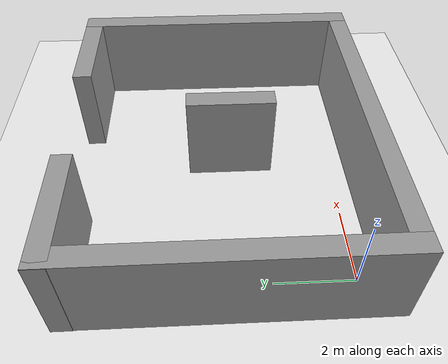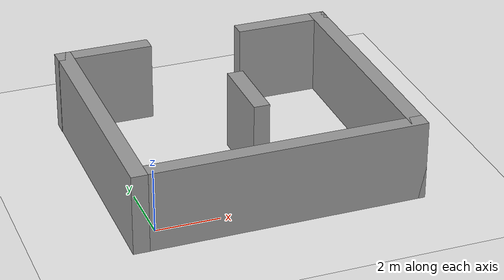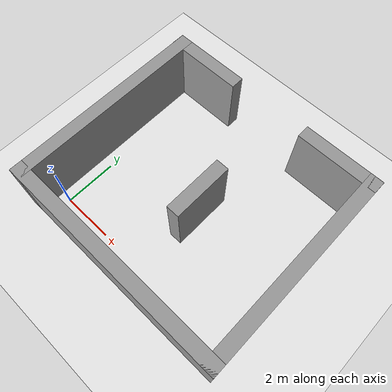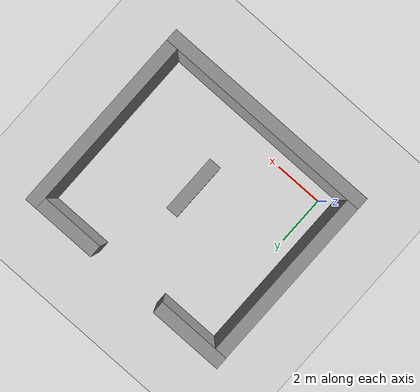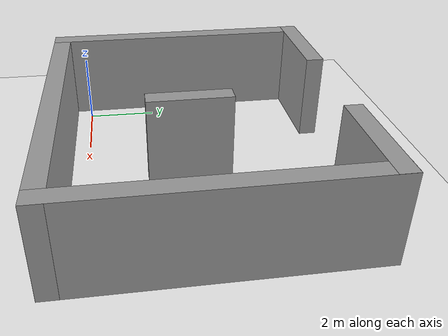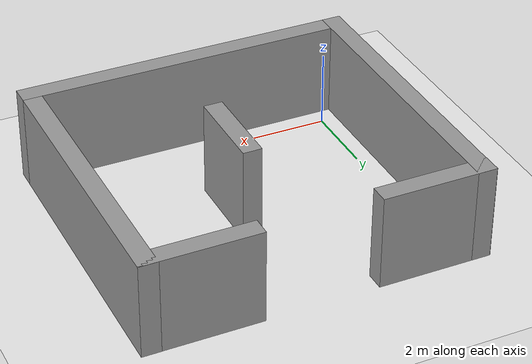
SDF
<sdf version="1.4">
 <world name="default">
  <light name="sun" type="directional">
   <pose>0 0 10 0 -0 0</pose>
   <diffuse>0.8 0.8 0.8 1</diffuse>
   <specular>0.2 0.2 0.2 1</specular>
   <attenuation>
    <range>1000</range>
    <constant>0.9</constant>
    <linear>0.01</linear>
    <quadratic>0.001</quadratic>
   </attenuation>
   <direction>0.5 0.1 -0.9</direction>
  </light>
  <scene><ambient>0.4 0.4 0.4 1</ambient><background>0.53 0.808 0.98 1</background><shadows>1</shadows></scene>
  <physics type="ode">
   <max_step_size>0.01</max_step_size>
   <real_time_factor>1</real_time_factor>
   <real_time_update_rate>100</real_time_update_rate>
   <gravity>0 0 -9.8</gravity>
  </physics>
  <model name="ground_plane_0">
   <static>1</static>
   <link name="link">
    <collision name="collision">
     <geometry><plane><normal>0 0 1</normal><size>100 100</size></plane></geometry>
     <surface><friction><ode><mu>100</mu><mu2>50</mu2></ode></friction></surface>
    </collision>
    <visual name="visual">
     <cast_shadows>0</cast_shadows>
     <geometry><plane><normal>0 0 1</normal><size>100 100</size></plane></geometry>
     <material>
      <script><uri>file://media/materials/scripts/gazebo.material</uri><name>Gazebo/White</name></script>
     </material>
    </visual>
    <velocity_decay><linear>0</linear><angular>0</angular></velocity_decay>
   </link>
   <pose>0.497681 0 0 0 -0 0</pose>
  </model>
  <spherical_coordinates>
   <surface_model>EARTH_WGS84</surface_model>
   <latitude_deg>0</latitude_deg>
   <longitude_deg>0</longitude_deg>
   <elevation>0</elevation>
   <heading_deg>0</heading_deg>
  </spherical_coordinates>
  <model name="laser_model">
   <link name="Wall_0">
    <collision name="Wall_0_Collision">
     <geometry><box><size>9 0.5 2.5</size></box></geometry>
     <pose>0 0 1.25 0 -0 0</pose>
    </collision>
    <visual name="Wall_0_Visual">
     <pose>0 0 1.25 0 -0 0</pose>
     <geometry><box><size>9 0.5 2.5</size></box></geometry>
     <material>
      <script><uri>file://media/materials/scripts/gazebo.material</uri><name>Gazebo/Grey</name></script>
     </material>
    </visual>
    <velocity_decay><linear>0</linear><angular>0</angular></velocity_decay>
    <pose>-0.05 -0.82 0 0 -0 0</pose>
   </link>
   <link name="Wall_11">
    <collision name="Wall_11_Collision">
     <geometry><box><size>3 0.5 2.5</size></box></geometry>
     <pose>0 0 1.25 0 -0 0</pose>
    </collision>
    <visual name="Wall_11_Visual">
     <pose>0 0 1.25 0 -0 0</pose>
     <geometry><box><size>3 0.5 2.5</size></box></geometry>
     <material>
      <script><uri>file://media/materials/scripts/gazebo.material</uri><name>Gazebo/Grey</name></script>
     </material>
    </visual>
    <velocity_decay><linear>0</linear><angular>0</angular></velocity_decay>
    <pose>2.96127 -8.31658 0 0 -0 0</pose>
   </link>
   <link name="Wall_13">
    <collision name="Wall_13_Collision">
     <geometry><box><size>2.309 0.5 2.5</size></box></geometry>
     <pose>0 0 1.25 0 -0 0</pose>
    </collision>
    <visual name="Wall_13_Visual">
     <pose>0 0 1.25 0 -0 0</pose>
     <geometry><box><size>2.309 0.5 2.5</size></box></geometry>
     <material>
      <script><uri>file://media/materials/scripts/gazebo.material</uri><name>Gazebo/Grey</name></script>
     </material>
    </visual>
    <velocity_decay><linear>0</linear><angular>0</angular></velocity_decay>
    <pose>-0.385023 -4.34382 0 0 0 -1.5708</pose>
   </link>
   <link name="Wall_2">
    <collision name="Wall_2_Collision">
     <geometry><box><size>8 0.5 2.5</size></box></geometry>
     <pose>0 0 1.25 0 -0 0</pose>
    </collision>
    <visual name="Wall_2_Visual">
     <pose>0 0 1.25 0 -0 0</pose>
     <geometry><box><size>8 0.5 2.5</size></box></geometry>
     <material>
      <script><uri>file://media/materials/scripts/gazebo.material</uri><name>Gazebo/Grey</name></script>
     </material>
    </visual>
    <velocity_decay><linear>0</linear><angular>0</angular></velocity_decay>
    <pose>-4.3 -4.57 0 0 0 -1.5708</pose>
   </link>
   <link name="Wall_7">
    <collision name="Wall_7_Collision">
     <geometry><box><size>8 0.5 2.5</size></box></geometry>
     <pose>0 0 1.25 0 -0 0</pose>
    </collision>
    <visual name="Wall_7_Visual">
     <pose>0 0 1.25 0 -0 0</pose>
     <geometry><box><size>8 0.5 2.5</size></box></geometry>
     <material>
      <script><uri>file://media/materials/scripts/gazebo.material</uri><name>Gazebo/Grey</name></script>
     </material>
    </visual>
    <velocity_decay><linear>0</linear><angular>0</angular></velocity_decay>
    <pose>4.20127 -4.56705 0 0 0 -1.5708</pose>
   </link>
   <link name="Wall_9">
    <collision name="Wall_9_Collision">
     <geometry><box><size>3.064 0.5 2.5</size></box></geometry>
     <pose>0 0 1.25 0 -0 0</pose>
    </collision>
    <visual name="Wall_9_Visual">
     <pose>0 0 1.25 0 -0 0</pose>
     <geometry><box><size>3.064 0.5 2.5</size></box></geometry>
     <material>
      <script><uri>file://media/materials/scripts/gazebo.material</uri><name>Gazebo/Grey</name></script>
     </material>
    </visual>
    <velocity_decay><linear>0</linear><angular>0</angular></velocity_decay>
    <pose>-3.01359 -8.31674 0 0 -0 0</pose>
   </link>
   <static>1</static>
   <pose>3.51006 -1.53378 0 0 -0 3.14137</pose>
  </model>
 </world>
</sdf>
